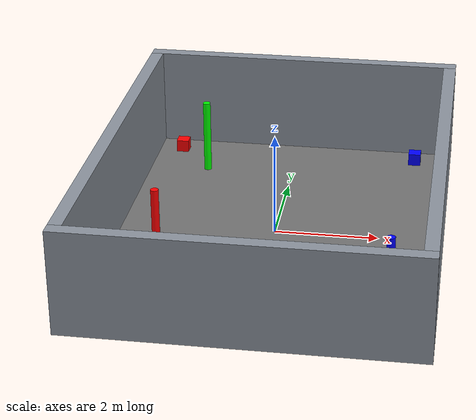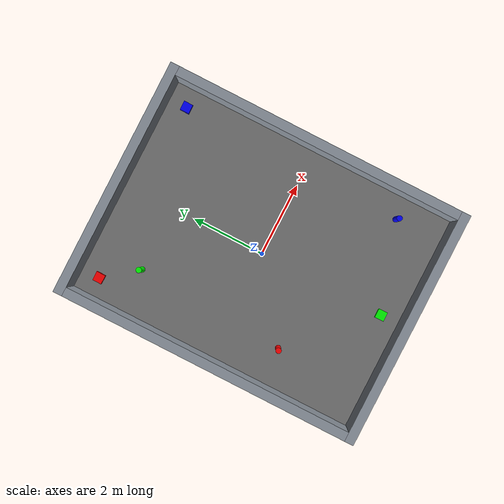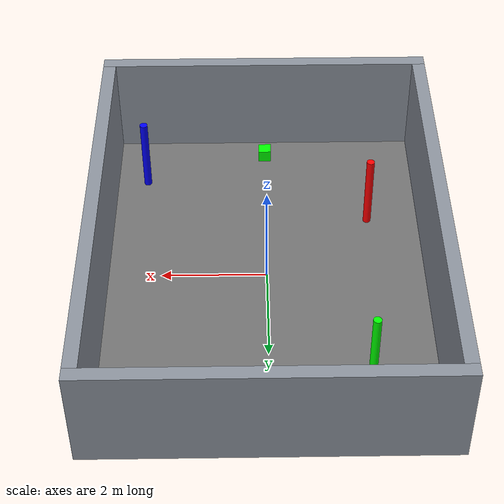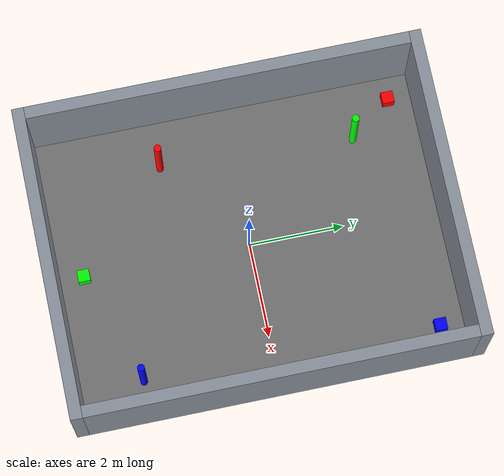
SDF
<?xml version="1.0" ?>
<sdf version="1.9">
  <!-- 6 x 8 m delivery arena with destinations and pickup boxes. -->
  <world name="random_world">
    <scene>
      <ambient>0.65 0.65 0.65 1</ambient>
      <background>0.82 0.88 0.95 1</background>
      <shadows>true</shadows>
    </scene>

    <physics name="fast" type="ignored">
      <max_step_size>0.01</max_step_size>
      <real_time_update_rate>400</real_time_update_rate>
      <real_time_factor>2.0</real_time_factor>
    </physics>

    <plugin filename="ignition-gazebo-physics-system" name="ignition::gazebo::systems::Physics">
      <include_entity_names>true</include_entity_names>
    </plugin>
    <plugin filename="ignition-gazebo-sensors-system" name="ignition::gazebo::systems::Sensors">
      <render_engine>ogre2</render_engine>
    </plugin>
    <plugin filename="ignition-gazebo-user-commands-system" name="ignition::gazebo::systems::UserCommands"/>
    <plugin filename="libignition-gazebo-contact-system.so" name="ignition::gazebo::systems::Contact">
      <topic>/world/random_world/physics/contacts</topic>
    </plugin>
    <plugin filename="ignition-gazebo-scene-broadcaster-system" name="ignition::gazebo::systems::SceneBroadcaster"/>

    <light name="sun" type="directional">
      <pose>0 0 10 0 0 0</pose>
      <cast_shadows>true</cast_shadows>
      <intensity>1</intensity>
      <direction>-0.5 0.5 -1</direction>
      <diffuse>1 1 1 1</diffuse>
      <specular>0.1 0.1 0.1 1</specular>
      <attenuation>
        <range>20</range><linear>0.1</linear><constant>0.9</constant><quadratic>0.01</quadratic>
      </attenuation>
    </light>

    <model name="ground_plane">
      <static>true</static>
      <pose>0 0 -0.01 0 0 0</pose>
      <link name="link">
        <collision name="collision">
          <geometry><box><size>6 8 0.02</size></box></geometry>
        </collision>
        <visual name="visual">
          <geometry><box><size>6 8 0.02</size></box></geometry>
          <material>
            <ambient>0.45 0.45 0.45 1</ambient>
            <diffuse>0.45 0.45 0.45 1</diffuse>
          </material>
        </visual>
      </link>
    </model>

    <!-- Wall inner faces lie at X = +/-3 m and Y = +/-4 m. -->
    <model name="north_wall">
      <static>true</static><pose>0 4.125 1 0 0 0</pose>
      <link name="link">
        <collision name="collision"><geometry><box><size>6.5 0.25 2</size></box></geometry></collision>
        <visual name="visual"><geometry><box><size>6.5 0.25 2</size></box></geometry><material><ambient>0.55 0.58 0.62 1</ambient><diffuse>0.55 0.58 0.62 1</diffuse></material></visual>
      </link>
    </model>
    <model name="south_wall">
      <static>true</static><pose>0 -4.125 1 0 0 0</pose>
      <link name="link">
        <collision name="collision"><geometry><box><size>6.5 0.25 2</size></box></geometry></collision>
        <visual name="visual"><geometry><box><size>6.5 0.25 2</size></box></geometry><material><ambient>0.55 0.58 0.62 1</ambient><diffuse>0.55 0.58 0.62 1</diffuse></material></visual>
      </link>
    </model>
    <model name="east_wall">
      <static>true</static><pose>3.125 0 1 0 0 0</pose>
      <link name="link">
        <collision name="collision"><geometry><box><size>0.25 8 2</size></box></geometry></collision>
        <visual name="visual"><geometry><box><size>0.25 8 2</size></box></geometry><material><ambient>0.55 0.58 0.62 1</ambient><diffuse>0.55 0.58 0.62 1</diffuse></material></visual>
      </link>
    </model>
    <model name="west_wall">
      <static>true</static><pose>-3.125 0 1 0 0 0</pose>
      <link name="link">
        <collision name="collision"><geometry><box><size>0.25 8 2</size></box></geometry></collision>
        <visual name="visual"><geometry><box><size>0.25 8 2</size></box></geometry><material><ambient>0.55 0.58 0.62 1</ambient><diffuse>0.55 0.58 0.62 1</diffuse></material></visual>
      </link>
    </model>

    <!-- Patrolling targets, also used as delivery destinations. -->
    <model name="red_box"><pose>-2 -1.5 0.006 0 0 0.37</pose><static>true</static><link name="link"><visual name="visual"><pose>0 0 0.75 0 0 0</pose><visibility_flags>4</visibility_flags><geometry><cylinder><radius>0.075</radius><length>1.5</length></cylinder></geometry><material><ambient>1 0 0 1</ambient><diffuse>1 0 0 1</diffuse><emissive>1 0 0 1</emissive></material></visual></link></model>
    <model name="green_box"><pose>-1.8 2.6 0.006 0 0 1.12</pose><static>true</static><link name="link"><visual name="visual"><pose>0 0 0.75 0 0 0</pose><visibility_flags>4</visibility_flags><geometry><cylinder><radius>0.075</radius><length>1.5</length></cylinder></geometry><material><ambient>0 1 0 1</ambient><diffuse>0 1 0 1</diffuse><emissive>0 1 0 1</emissive></material></visual></link></model>
    <model name="blue_box"><pose>2.4 -2.7 0.006 0 0 2.31</pose><static>true</static><link name="link"><visual name="visual"><pose>0 0 0.75 0 0 0</pose><visibility_flags>4</visibility_flags><geometry><cylinder><radius>0.075</radius><length>1.5</length></cylinder></geometry><material><ambient>0 0 1 1</ambient><diffuse>0 0 1 1</diffuse><emissive>0 0 1 1</emissive></material></visual></link></model>

    <!-- Delivery pickup boxes. -->
    <model name="red_delivery_box"><pose>-2.5 3.5 0.125 0 0 0</pose><static>true</static><link name="link"><collision name="collision"><geometry><box><size>0.25 0.25 0.25</size></box></geometry></collision><visual name="visual"><geometry><box><size>0.25 0.25 0.25</size></box></geometry><material><ambient>1 0 0 1</ambient><diffuse>1 0 0 1</diffuse></material></visual></link></model>
    <model name="green_delivery_box"><pose>0 -3.5 0.125 0 0 0</pose><static>true</static><link name="link"><collision name="collision"><geometry><box><size>0.25 0.25 0.25</size></box></geometry></collision><visual name="visual"><geometry><box><size>0.25 0.25 0.25</size></box></geometry><material><ambient>0 1 0 1</ambient><diffuse>0 1 0 1</diffuse></material></visual></link></model>
    <model name="blue_delivery_box"><pose>2.5 3.5 0.125 0 0 0</pose><static>true</static><link name="link"><collision name="collision"><geometry><box><size>0.25 0.25 0.25</size></box></geometry></collision><visual name="visual"><geometry><box><size>0.25 0.25 0.25</size></box></geometry><material><ambient>0 0 1 1</ambient><diffuse>0 0 1 1</diffuse></material></visual></link></model>

    <model name="top_view_camera">
      <static>true</static>
      <pose>0 0 12 0 1.57079632679 0</pose>
      <link name="link">
        <sensor name="top_view_camera" type="camera">
          <always_on>true</always_on>
          <update_rate>15</update_rate>
          <topic>top_view_camera/image</topic>
          <camera>
            <horizontal_fov>1.35</horizontal_fov>
            <image>
              <width>1920</width>
              <height>1080</height>
              <format>R8G8B8</format>
            </image>
            <clip><near>0.1</near><far>100</far></clip>
          </camera>
        </sensor>
      </link>
    </model>
  </world>
</sdf>
